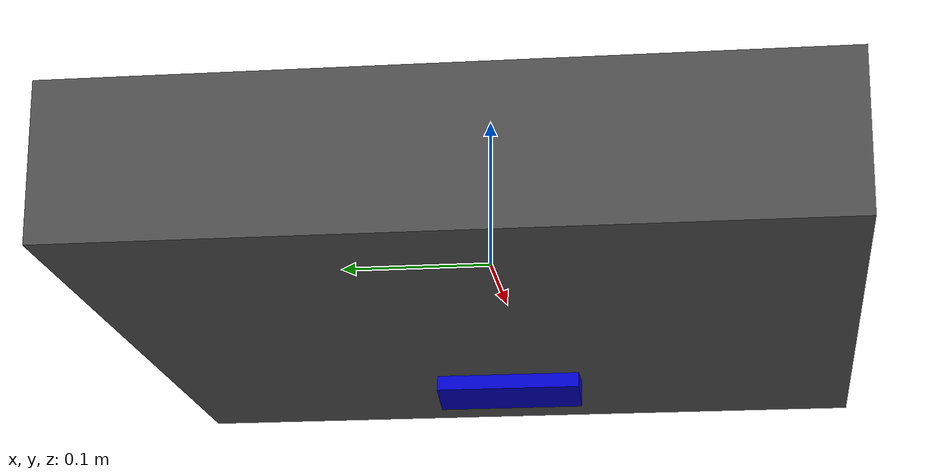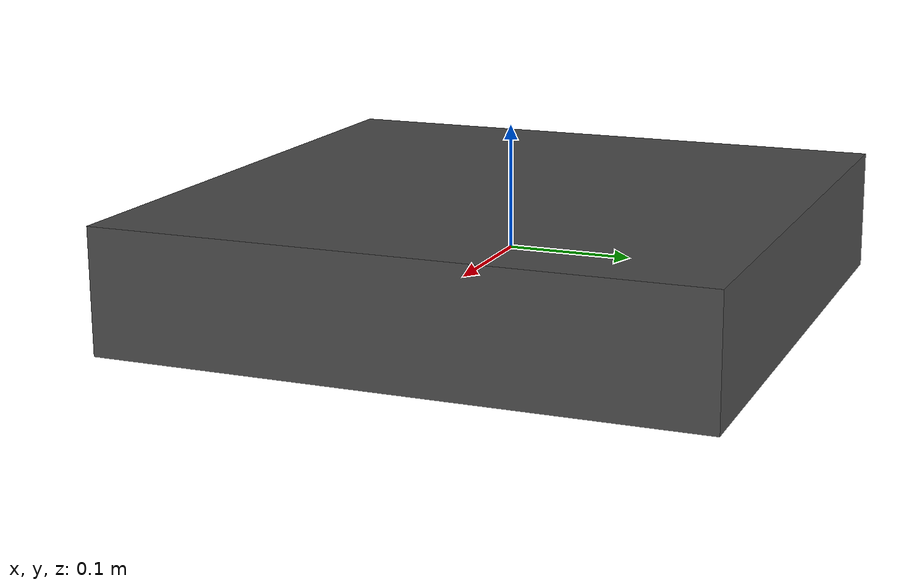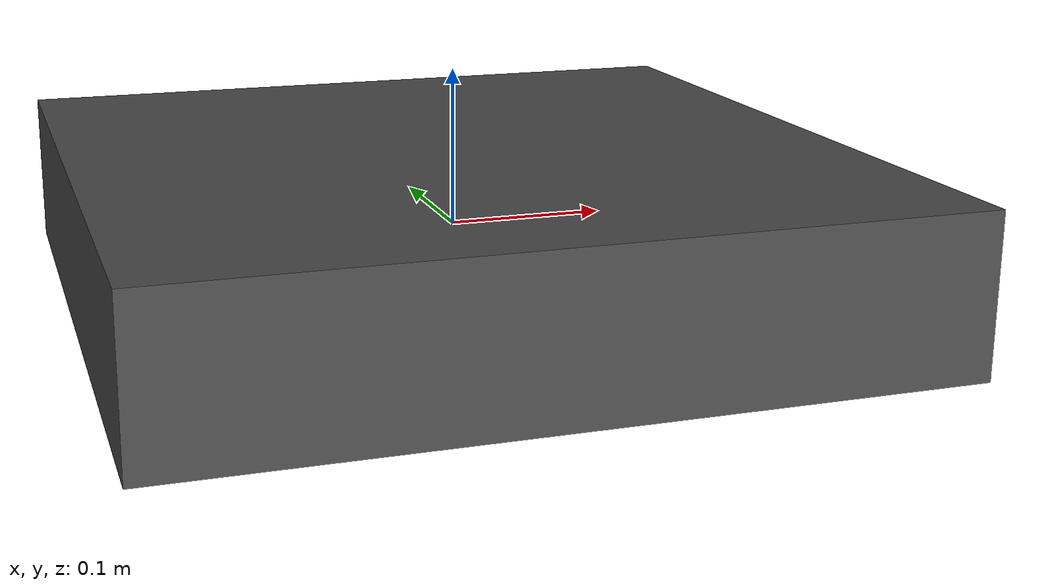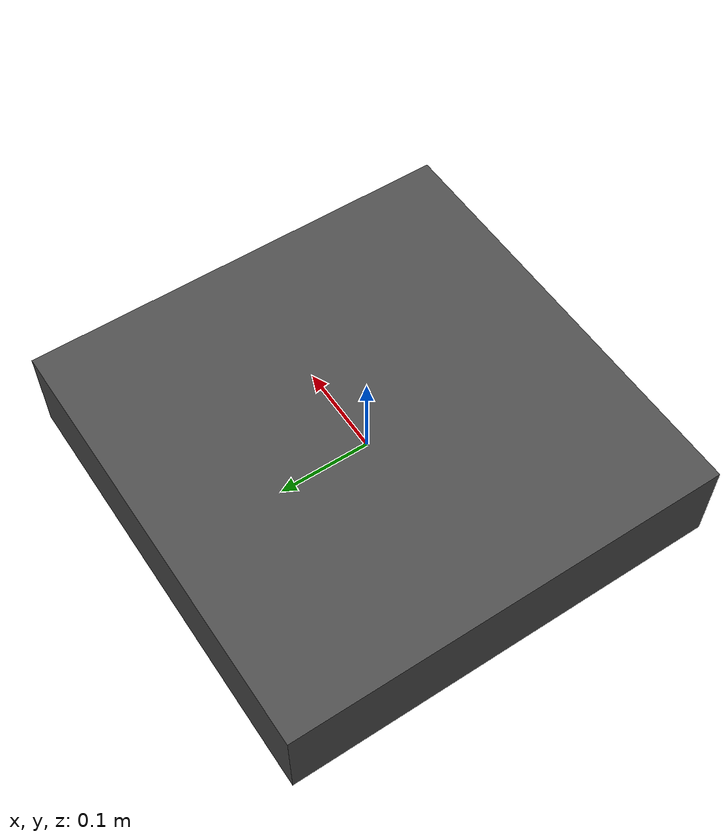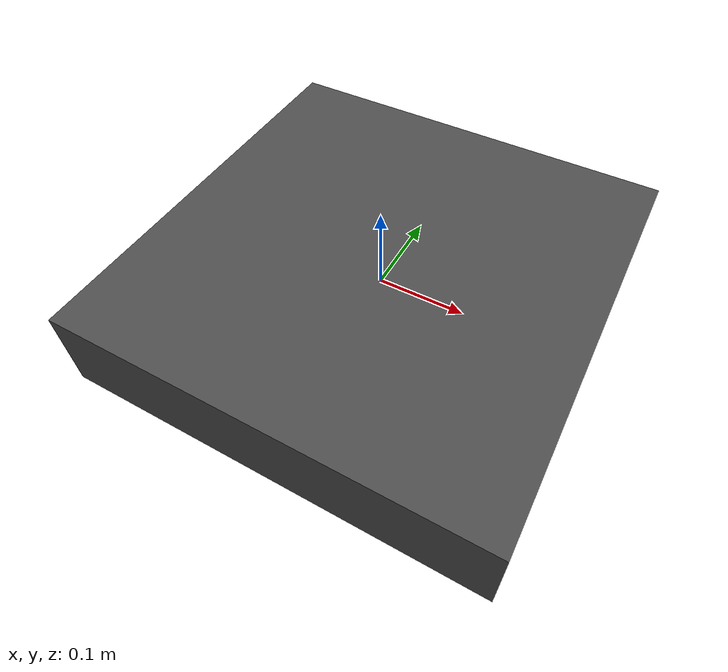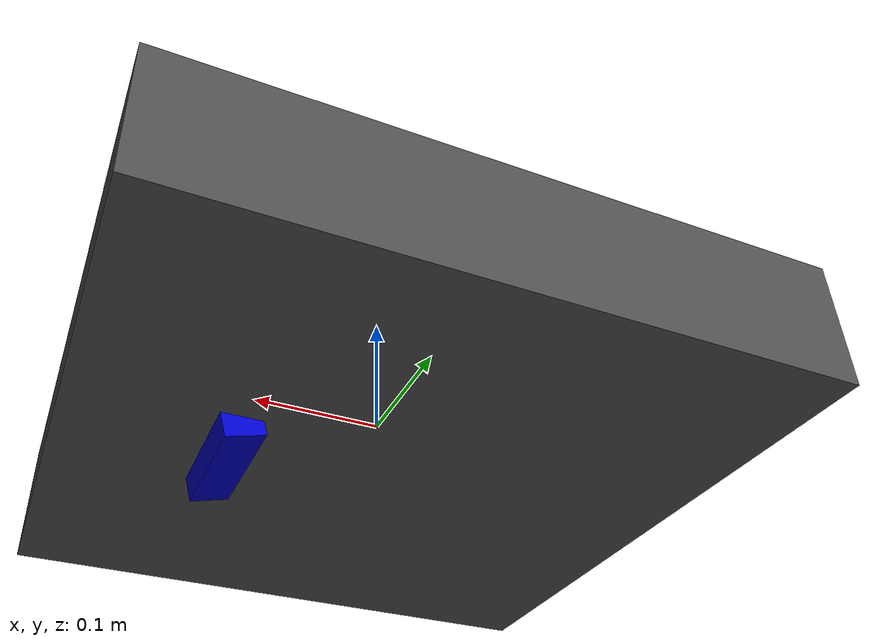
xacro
<?xml version="1.0"?>
<robot name="s500_drone" xmlns:xacro="http://ros.org/wiki/xacro">

  <!-- Dimensions should be measured and adjusted for the real drone -->
  <!-- Base link approximating S500 frame -->
  <link name="base_link">
    <visual>
      <origin xyz="0 0 0" rpy="0 0 0"/>
      <geometry>
        <box size="0.48 0.48 0.1"/>
      </geometry>
      <material name="dark_grey">
        <color rgba="0.3 0.3 0.3 1.0"/>
      </material>
    </visual>
    <collision>
      <origin xyz="0 0 0" rpy="0 0 0"/>
      <geometry>
        <box size="0.48 0.48 0.1"/>
      </geometry>
    </collision>
    <inertial>
      <mass value="2.0"/>
      <inertia ixx="0.05" ixy="0" ixz="0" iyy="0.05" iyz="0" izz="0.1"/>
    </inertial>
  </link>

  <!-- Properties for camera position so user can adjust -->
  <xacro:property name="camera_x" value="0.12" />
  <xacro:property name="camera_y" value="0.0" />
  <xacro:property name="camera_z" value="-0.05" />
  <xacro:property name="camera_pitch" value="0.26" /> <!-- ~15 degrees downward -->

  <link name="camera_link">
    <visual>
      <origin xyz="0 0 0" rpy="0 0 0"/>
      <geometry>
        <box size="0.03 0.1 0.03"/>
      </geometry>
      <material name="blue">
        <color rgba="0.0 0.0 0.8 1.0"/>
      </material>
    </visual>
  </link>

  <joint name="camera_joint" type="fixed">
    <parent link="base_link"/>
    <child link="camera_link"/>
    <origin xyz="${camera_x} ${camera_y} ${camera_z}" rpy="0 ${camera_pitch} 0"/>
  </joint>

  <!-- Standard ROS optical frame convention (Z forward, X right, Y down) -->
  <link name="camera_optical_frame"/>

  <joint name="camera_optical_joint" type="fixed">
    <parent link="camera_link"/>
    <child link="camera_optical_frame"/>
    <origin xyz="0 0 0" rpy="${-pi/2} 0 ${-pi/2}"/>
  </joint>

</robot>
